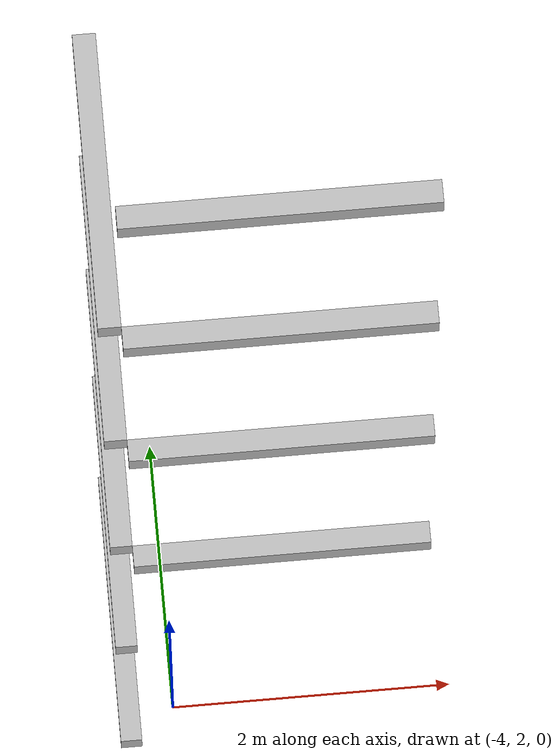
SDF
<sdf version="1.7">
 <world name="default">
  <model name="orthogonal_747_2.000.15_TS">
   <static>1</static>
   <link name="y_link_1_3_1">
    <inertial>
     <mass>1</mass>
     <inertia>
      <ixx>0.166667</ixx>
      <ixy>0</ixy>
      <ixz>0</ixz>
      <iyy>0.166667</iyy>
      <iyz>0</iyz>
      <izz>0.166667</izz>
     </inertia>
    </inertial>
    <pose>2.15 7.525 3.225 0 -0 0</pose>
    <visual name="visual_0">
     <laser_retro>1352</laser_retro>
     <geometry><box><size>0.15 1e-06 0.15</size></box></geometry>
     <material>
      <script><name>Gazebo/Grey</name><uri>file://media/materials/scripts/gazebo.material</uri></script>
      <shader type="pixel"><normal_map>__default__</normal_map></shader>
      <ambient>0.678 0.498 0.659 1</ambient>
      <diffuse>0.7 0.7 0.7 1</diffuse>
      <specular>0.01 0.01 0.01 1</specular>
      <emissive>0 0 0 1</emissive>
     </material>
     <pose>0 -1 0 0 -0 0</pose>
     <transparency>1</transparency>
    </visual>
    <visual name="visual_1">
     <laser_retro>1353</laser_retro>
     <geometry><box><size>0.15 1e-06 0.15</size></box></geometry>
     <material>
      <script><name>Gazebo/Grey</name><uri>file://media/materials/scripts/gazebo.material</uri></script>
      <shader type="pixel"><normal_map>__default__</normal_map></shader>
      <ambient>0.447 0.624 0.812 1</ambient>
      <diffuse>0.7 0.7 0.7 1</diffuse>
      <specular>0.01 0.01 0.01 1</specular>
      <emissive>0 0 0 1</emissive>
     </material>
     <pose>0 1 0 0 -0 0</pose>
     <transparency>1</transparency>
    </visual>
    <visual name="visual_2">
     <laser_retro>1354</laser_retro>
     <geometry><box><size>0.15 2 1e-06</size></box></geometry>
     <material>
      <script><name>Gazebo/Grey</name><uri>file://media/materials/scripts/gazebo.material</uri></script>
      <shader type="pixel"><normal_map>__default__</normal_map></shader>
      <ambient>0.988 0.686 0.243 1</ambient>
      <diffuse>0.7 0.7 0.7 1</diffuse>
      <specular>0.01 0.01 0.01 1</specular>
      <emissive>0 0 0 1</emissive>
     </material>
     <pose>0 0 -0.075 0 -0 0</pose>
     <transparency>1</transparency>
    </visual>
    <visual name="visual_3">
     <laser_retro>1355</laser_retro>
     <geometry><box><size>1e-06 2 0.15</size></box></geometry>
     <material>
      <script><name>Gazebo/Grey</name><uri>file://media/materials/scripts/gazebo.material</uri></script>
      <shader type="pixel"><normal_map>__default__</normal_map></shader>
      <ambient>0.988 0.914 0.31 1</ambient>
      <diffuse>0.7 0.7 0.7 1</diffuse>
      <specular>0.01 0.01 0.01 1</specular>
      <emissive>0 0 0 1</emissive>
     </material>
     <pose>0.075 0 0 0 -0 0</pose>
     <transparency>1</transparency>
    </visual>
    <visual name="visual_4">
     <laser_retro>1356</laser_retro>
     <geometry><box><size>0.15 2 1e-06</size></box></geometry>
     <material>
      <script><name>Gazebo/Grey</name><uri>file://media/materials/scripts/gazebo.material</uri></script>
      <shader type="pixel"><normal_map>__default__</normal_map></shader>
      <ambient>0.937 0.161 0.161 1</ambient>
      <diffuse>0.7 0.7 0.7 1</diffuse>
      <specular>0.01 0.01 0.01 1</specular>
      <emissive>0 0 0 1</emissive>
     </material>
     <pose>0 0 0.075 0 -0 0</pose>
     <transparency>1</transparency>
    </visual>
    <visual name="visual_5">
     <laser_retro>1357</laser_retro>
     <geometry><box><size>1e-06 2 0.15</size></box></geometry>
     <material>
      <script><name>Gazebo/Grey</name><uri>file://media/materials/scripts/gazebo.material</uri></script>
      <shader type="pixel"><normal_map>__default__</normal_map></shader>
      <ambient>0.541 0.886 0.204 1</ambient>
      <diffuse>0.7 0.7 0.7 1</diffuse>
      <specular>0.01 0.01 0.01 1</specular>
      <emissive>0 0 0 1</emissive>
     </material>
     <pose>-0.075 0 0 0 -0 0</pose>
     <transparency>1</transparency>
    </visual>
    <visual name="visual_texture">
     <geometry><box><size>0.149985 1.9998 0.149985</size></box></geometry>
     <material>
      <script>
       <uri>model://BASE_MODELS/simple_block_v2_textured/materials/scripts</uri>
       <uri>model://BASE_MODELS/simple_block_v2_textured/materials/textures</uri>
       <name>metal</name>
      </script>
     </material>
     <laser_retro>1358</laser_retro>
    </visual>
    <collision name="collision">
     <geometry><box><size>0.15 2 0.15</size></box></geometry>
     <surface>
      <friction>
       <ode><mu>1</mu><mu2>1</mu2><fdir1>0 0 0</fdir1><slip1>0</slip1><slip2>0</slip2></ode>
       <torsional>
        <coefficient>1</coefficient>
        <patch_radius>0</patch_radius>
        <surface_radius>0</surface_radius>
        <use_patch_radius>1</use_patch_radius>
        <ode><slip>0</slip></ode>
       </torsional>
      </friction>
      <bounce><restitution_coefficient>0</restitution_coefficient><threshold>1e+06</threshold></bounce>
      <contact>
       <collide_without_contact>0</collide_without_contact>
       <collide_without_contact_bitmask>1</collide_without_contact_bitmask>
       <collide_bitmask>1</collide_bitmask>
       <ode>
        <soft_cfm>0</soft_cfm>
        <soft_erp>0.2</soft_erp>
        <kp>1e+13</kp>
        <kd>1</kd>
        <max_vel>0.01</max_vel>
        <min_depth>0</min_depth>
       </ode>
       <bullet>
        <split_impulse>1</split_impulse>
        <split_impulse_penetration_threshold>-0.01</split_impulse_penetration_threshold>
        <soft_cfm>0</soft_cfm>
        <soft_erp>0.2</soft_erp>
        <kp>1e+13</kp>
        <kd>1</kd>
       </bullet>
      </contact>
     </surface>
    </collision>
   </link>
   <link name="y_link_2_3_1">
    <inertial>
     <mass>1</mass>
     <inertia>
      <ixx>0.166667</ixx>
      <ixy>0</ixy>
      <ixz>0</ixz>
      <iyy>0.166667</iyy>
      <iyz>0</iyz>
      <izz>0.166667</izz>
     </inertia>
    </inertial>
    <pose>2.15 7.525 5.375 0 -0 0</pose>
    <visual name="visual_0">
     <laser_retro>2255</laser_retro>
     <geometry><box><size>0.15 1e-06 0.15</size></box></geometry>
     <material>
      <script><name>Gazebo/Grey</name><uri>file://media/materials/scripts/gazebo.material</uri></script>
      <shader type="pixel"><normal_map>__default__</normal_map></shader>
      <ambient>0.678 0.498 0.659 1</ambient>
      <diffuse>0.7 0.7 0.7 1</diffuse>
      <specular>0.01 0.01 0.01 1</specular>
      <emissive>0 0 0 1</emissive>
     </material>
     <pose>0 -1 0 0 -0 0</pose>
     <transparency>1</transparency>
    </visual>
    <visual name="visual_1">
     <laser_retro>2256</laser_retro>
     <geometry><box><size>0.15 1e-06 0.15</size></box></geometry>
     <material>
      <script><name>Gazebo/Grey</name><uri>file://media/materials/scripts/gazebo.material</uri></script>
      <shader type="pixel"><normal_map>__default__</normal_map></shader>
      <ambient>0.447 0.624 0.812 1</ambient>
      <diffuse>0.7 0.7 0.7 1</diffuse>
      <specular>0.01 0.01 0.01 1</specular>
      <emissive>0 0 0 1</emissive>
     </material>
     <pose>0 1 0 0 -0 0</pose>
     <transparency>1</transparency>
    </visual>
    <visual name="visual_2">
     <laser_retro>2257</laser_retro>
     <geometry><box><size>0.15 2 1e-06</size></box></geometry>
     <material>
      <script><name>Gazebo/Grey</name><uri>file://media/materials/scripts/gazebo.material</uri></script>
      <shader type="pixel"><normal_map>__default__</normal_map></shader>
      <ambient>0.988 0.686 0.243 1</ambient>
      <diffuse>0.7 0.7 0.7 1</diffuse>
      <specular>0.01 0.01 0.01 1</specular>
      <emissive>0 0 0 1</emissive>
     </material>
     <pose>0 0 -0.075 0 -0 0</pose>
     <transparency>1</transparency>
    </visual>
    <visual name="visual_3">
     <laser_retro>2258</laser_retro>
     <geometry><box><size>1e-06 2 0.15</size></box></geometry>
     <material>
      <script><name>Gazebo/Grey</name><uri>file://media/materials/scripts/gazebo.material</uri></script>
      <shader type="pixel"><normal_map>__default__</normal_map></shader>
      <ambient>0.988 0.914 0.31 1</ambient>
      <diffuse>0.7 0.7 0.7 1</diffuse>
      <specular>0.01 0.01 0.01 1</specular>
      <emissive>0 0 0 1</emissive>
     </material>
     <pose>0.075 0 0 0 -0 0</pose>
     <transparency>1</transparency>
    </visual>
    <visual name="visual_4">
     <laser_retro>2259</laser_retro>
     <geometry><box><size>0.15 2 1e-06</size></box></geometry>
     <material>
      <script><name>Gazebo/Grey</name><uri>file://media/materials/scripts/gazebo.material</uri></script>
      <shader type="pixel"><normal_map>__default__</normal_map></shader>
      <ambient>0.937 0.161 0.161 1</ambient>
      <diffuse>0.7 0.7 0.7 1</diffuse>
      <specular>0.01 0.01 0.01 1</specular>
      <emissive>0 0 0 1</emissive>
     </material>
     <pose>0 0 0.075 0 -0 0</pose>
     <transparency>1</transparency>
    </visual>
    <visual name="visual_5">
     <laser_retro>2260</laser_retro>
     <geometry><box><size>1e-06 2 0.15</size></box></geometry>
     <material>
      <script><name>Gazebo/Grey</name><uri>file://media/materials/scripts/gazebo.material</uri></script>
      <shader type="pixel"><normal_map>__default__</normal_map></shader>
      <ambient>0.541 0.886 0.204 1</ambient>
      <diffuse>0.7 0.7 0.7 1</diffuse>
      <specular>0.01 0.01 0.01 1</specular>
      <emissive>0 0 0 1</emissive>
     </material>
     <pose>-0.075 0 0 0 -0 0</pose>
     <transparency>1</transparency>
    </visual>
    <visual name="visual_texture">
     <geometry><box><size>0.149985 1.9998 0.149985</size></box></geometry>
     <material>
      <script>
       <uri>model://BASE_MODELS/simple_block_v2_textured/materials/scripts</uri>
       <uri>model://BASE_MODELS/simple_block_v2_textured/materials/textures</uri>
       <name>metal</name>
      </script>
     </material>
     <laser_retro>2261</laser_retro>
    </visual>
    <collision name="collision">
     <geometry><box><size>0.15 2 0.15</size></box></geometry>
     <surface>
      <friction>
       <ode><mu>1</mu><mu2>1</mu2><fdir1>0 0 0</fdir1><slip1>0</slip1><slip2>0</slip2></ode>
       <torsional>
        <coefficient>1</coefficient>
        <patch_radius>0</patch_radius>
        <surface_radius>0</surface_radius>
        <use_patch_radius>1</use_patch_radius>
        <ode><slip>0</slip></ode>
       </torsional>
      </friction>
      <bounce><restitution_coefficient>0</restitution_coefficient><threshold>1e+06</threshold></bounce>
      <contact>
       <collide_without_contact>0</collide_without_contact>
       <collide_without_contact_bitmask>1</collide_without_contact_bitmask>
       <collide_bitmask>1</collide_bitmask>
       <ode>
        <soft_cfm>0</soft_cfm>
        <soft_erp>0.2</soft_erp>
        <kp>1e+13</kp>
        <kd>1</kd>
        <max_vel>0.01</max_vel>
        <min_depth>0</min_depth>
       </ode>
       <bullet>
        <split_impulse>1</split_impulse>
        <split_impulse_penetration_threshold>-0.01</split_impulse_penetration_threshold>
        <soft_cfm>0</soft_cfm>
        <soft_erp>0.2</soft_erp>
        <kp>1e+13</kp>
        <kd>1</kd>
       </bullet>
      </contact>
     </surface>
    </collision>
   </link>
   <link name="x_link_3_3_1">
    <inertial>
     <mass>1</mass>
     <inertia>
      <ixx>0.166667</ixx>
      <ixy>0</ixy>
      <ixz>0</ixz>
      <iyy>0.166667</iyy>
      <iyz>0</iyz>
      <izz>0.166667</izz>
     </inertia>
    </inertial>
    <pose>3.225 6.45 7.525 0 -0 0</pose>
    <visual name="visual_0">
     <laser_retro>3151</laser_retro>
     <geometry><box><size>2 1e-06 0.15</size></box></geometry>
     <material>
      <script><name>Gazebo/Grey</name><uri>file://media/materials/scripts/gazebo.material</uri></script>
      <shader type="pixel"><normal_map>__default__</normal_map></shader>
      <ambient>0.678 0.498 0.659 1</ambient>
      <diffuse>0.7 0.7 0.7 1</diffuse>
      <specular>0.01 0.01 0.01 1</specular>
      <emissive>0 0 0 1</emissive>
     </material>
     <pose>0 -0.075 0 0 -0 0</pose>
     <transparency>1</transparency>
    </visual>
    <visual name="visual_1">
     <laser_retro>3152</laser_retro>
     <geometry><box><size>2 1e-06 0.15</size></box></geometry>
     <material>
      <script><name>Gazebo/Grey</name><uri>file://media/materials/scripts/gazebo.material</uri></script>
      <shader type="pixel"><normal_map>__default__</normal_map></shader>
      <ambient>0.447 0.624 0.812 1</ambient>
      <diffuse>0.7 0.7 0.7 1</diffuse>
      <specular>0.01 0.01 0.01 1</specular>
      <emissive>0 0 0 1</emissive>
     </material>
     <pose>0 0.075 0 0 -0 0</pose>
     <transparency>1</transparency>
    </visual>
    <visual name="visual_2">
     <laser_retro>3153</laser_retro>
     <geometry><box><size>2 0.15 1e-06</size></box></geometry>
     <material>
      <script><name>Gazebo/Grey</name><uri>file://media/materials/scripts/gazebo.material</uri></script>
      <shader type="pixel"><normal_map>__default__</normal_map></shader>
      <ambient>0.988 0.686 0.243 1</ambient>
      <diffuse>0.7 0.7 0.7 1</diffuse>
      <specular>0.01 0.01 0.01 1</specular>
      <emissive>0 0 0 1</emissive>
     </material>
     <pose>0 0 -0.075 0 -0 0</pose>
     <transparency>1</transparency>
    </visual>
    <visual name="visual_3">
     <laser_retro>3154</laser_retro>
     <geometry><box><size>1e-06 0.15 0.15</size></box></geometry>
     <material>
      <script><name>Gazebo/Grey</name><uri>file://media/materials/scripts/gazebo.material</uri></script>
      <shader type="pixel"><normal_map>__default__</normal_map></shader>
      <ambient>0.988 0.914 0.31 1</ambient>
      <diffuse>0.7 0.7 0.7 1</diffuse>
      <specular>0.01 0.01 0.01 1</specular>
      <emissive>0 0 0 1</emissive>
     </material>
     <pose>1 0 0 0 -0 0</pose>
     <transparency>1</transparency>
    </visual>
    <visual name="visual_4">
     <laser_retro>3155</laser_retro>
     <geometry><box><size>2 0.15 1e-06</size></box></geometry>
     <material>
      <script><name>Gazebo/Grey</name><uri>file://media/materials/scripts/gazebo.material</uri></script>
      <shader type="pixel"><normal_map>__default__</normal_map></shader>
      <ambient>0.937 0.161 0.161 1</ambient>
      <diffuse>0.7 0.7 0.7 1</diffuse>
      <specular>0.01 0.01 0.01 1</specular>
      <emissive>0 0 0 1</emissive>
     </material>
     <pose>0 0 0.075 0 -0 0</pose>
     <transparency>1</transparency>
    </visual>
    <visual name="visual_5">
     <laser_retro>3156</laser_retro>
     <geometry><box><size>1e-06 0.15 0.15</size></box></geometry>
     <material>
      <script><name>Gazebo/Grey</name><uri>file://media/materials/scripts/gazebo.material</uri></script>
      <shader type="pixel"><normal_map>__default__</normal_map></shader>
      <ambient>0.541 0.886 0.204 1</ambient>
      <diffuse>0.7 0.7 0.7 1</diffuse>
      <specular>0.01 0.01 0.01 1</specular>
      <emissive>0 0 0 1</emissive>
     </material>
     <pose>-1 0 0 0 -0 0</pose>
     <transparency>1</transparency>
    </visual>
    <visual name="visual_texture">
     <geometry><box><size>1.9998 0.149985 0.149985</size></box></geometry>
     <material>
      <script>
       <uri>model://BASE_MODELS/simple_block_v2_textured/materials/scripts</uri>
       <uri>model://BASE_MODELS/simple_block_v2_textured/materials/textures</uri>
       <name>metal</name>
      </script>
     </material>
     <laser_retro>3157</laser_retro>
    </visual>
    <collision name="collision">
     <geometry><box><size>2 0.15 0.15</size></box></geometry>
     <surface>
      <friction>
       <ode><mu>1</mu><mu2>1</mu2><fdir1>0 0 0</fdir1><slip1>0</slip1><slip2>0</slip2></ode>
       <torsional>
        <coefficient>1</coefficient>
        <patch_radius>0</patch_radius>
        <surface_radius>0</surface_radius>
        <use_patch_radius>1</use_patch_radius>
        <ode><slip>0</slip></ode>
       </torsional>
      </friction>
      <bounce><restitution_coefficient>0</restitution_coefficient><threshold>1e+06</threshold></bounce>
      <contact>
       <collide_without_contact>0</collide_without_contact>
       <collide_without_contact_bitmask>1</collide_without_contact_bitmask>
       <collide_bitmask>1</collide_bitmask>
       <ode>
        <soft_cfm>0</soft_cfm>
        <soft_erp>0.2</soft_erp>
        <kp>1e+13</kp>
        <kd>1</kd>
        <max_vel>0.01</max_vel>
        <min_depth>0</min_depth>
       </ode>
       <bullet>
        <split_impulse>1</split_impulse>
        <split_impulse_penetration_threshold>-0.01</split_impulse_penetration_threshold>
        <soft_cfm>0</soft_cfm>
        <soft_erp>0.2</soft_erp>
        <kp>1e+13</kp>
        <kd>1</kd>
       </bullet>
      </contact>
     </surface>
    </collision>
   </link>
   <link name="y_link_3_3_1">
    <inertial>
     <mass>1</mass>
     <inertia>
      <ixx>0.166667</ixx>
      <ixy>0</ixy>
      <ixz>0</ixz>
      <iyy>0.166667</iyy>
      <iyz>0</iyz>
      <izz>0.166667</izz>
     </inertia>
    </inertial>
    <pose>2.15 7.525 7.525 0 -0 0</pose>
    <visual name="visual_0">
     <laser_retro>3158</laser_retro>
     <geometry><box><size>0.15 1e-06 0.15</size></box></geometry>
     <material>
      <script><name>Gazebo/Grey</name><uri>file://media/materials/scripts/gazebo.material</uri></script>
      <shader type="pixel"><normal_map>__default__</normal_map></shader>
      <ambient>0.678 0.498 0.659 1</ambient>
      <diffuse>0.7 0.7 0.7 1</diffuse>
      <specular>0.01 0.01 0.01 1</specular>
      <emissive>0 0 0 1</emissive>
     </material>
     <pose>0 -1 0 0 -0 0</pose>
     <transparency>1</transparency>
    </visual>
    <visual name="visual_1">
     <laser_retro>3159</laser_retro>
     <geometry><box><size>0.15 1e-06 0.15</size></box></geometry>
     <material>
      <script><name>Gazebo/Grey</name><uri>file://media/materials/scripts/gazebo.material</uri></script>
      <shader type="pixel"><normal_map>__default__</normal_map></shader>
      <ambient>0.447 0.624 0.812 1</ambient>
      <diffuse>0.7 0.7 0.7 1</diffuse>
      <specular>0.01 0.01 0.01 1</specular>
      <emissive>0 0 0 1</emissive>
     </material>
     <pose>0 1 0 0 -0 0</pose>
     <transparency>1</transparency>
    </visual>
    <visual name="visual_2">
     <laser_retro>3160</laser_retro>
     <geometry><box><size>0.15 2 1e-06</size></box></geometry>
     <material>
      <script><name>Gazebo/Grey</name><uri>file://media/materials/scripts/gazebo.material</uri></script>
      <shader type="pixel"><normal_map>__default__</normal_map></shader>
      <ambient>0.988 0.686 0.243 1</ambient>
      <diffuse>0.7 0.7 0.7 1</diffuse>
      <specular>0.01 0.01 0.01 1</specular>
      <emissive>0 0 0 1</emissive>
     </material>
     <pose>0 0 -0.075 0 -0 0</pose>
     <transparency>1</transparency>
    </visual>
    <visual name="visual_3">
     <laser_retro>3161</laser_retro>
     <geometry><box><size>1e-06 2 0.15</size></box></geometry>
     <material>
      <script><name>Gazebo/Grey</name><uri>file://media/materials/scripts/gazebo.material</uri></script>
      <shader type="pixel"><normal_map>__default__</normal_map></shader>
      <ambient>0.988 0.914 0.31 1</ambient>
      <diffuse>0.7 0.7 0.7 1</diffuse>
      <specular>0.01 0.01 0.01 1</specular>
      <emissive>0 0 0 1</emissive>
     </material>
     <pose>0.075 0 0 0 -0 0</pose>
     <transparency>1</transparency>
    </visual>
    <visual name="visual_4">
     <laser_retro>3162</laser_retro>
     <geometry><box><size>0.15 2 1e-06</size></box></geometry>
     <material>
      <script><name>Gazebo/Grey</name><uri>file://media/materials/scripts/gazebo.material</uri></script>
      <shader type="pixel"><normal_map>__default__</normal_map></shader>
      <ambient>0.937 0.161 0.161 1</ambient>
      <diffuse>0.7 0.7 0.7 1</diffuse>
      <specular>0.01 0.01 0.01 1</specular>
      <emissive>0 0 0 1</emissive>
     </material>
     <pose>0 0 0.075 0 -0 0</pose>
     <transparency>1</transparency>
    </visual>
    <visual name="visual_5">
     <laser_retro>3163</laser_retro>
     <geometry><box><size>1e-06 2 0.15</size></box></geometry>
     <material>
      <script><name>Gazebo/Grey</name><uri>file://media/materials/scripts/gazebo.material</uri></script>
      <shader type="pixel"><normal_map>__default__</normal_map></shader>
      <ambient>0.541 0.886 0.204 1</ambient>
      <diffuse>0.7 0.7 0.7 1</diffuse>
      <specular>0.01 0.01 0.01 1</specular>
      <emissive>0 0 0 1</emissive>
     </material>
     <pose>-0.075 0 0 0 -0 0</pose>
     <transparency>1</transparency>
    </visual>
    <visual name="visual_texture">
     <geometry><box><size>0.149985 1.9998 0.149985</size></box></geometry>
     <material>
      <script>
       <uri>model://BASE_MODELS/simple_block_v2_textured/materials/scripts</uri>
       <uri>model://BASE_MODELS/simple_block_v2_textured/materials/textures</uri>
       <name>metal</name>
      </script>
     </material>
     <laser_retro>3164</laser_retro>
    </visual>
    <collision name="collision">
     <geometry><box><size>0.15 2 0.15</size></box></geometry>
     <surface>
      <friction>
       <ode><mu>1</mu><mu2>1</mu2><fdir1>0 0 0</fdir1><slip1>0</slip1><slip2>0</slip2></ode>
       <torsional>
        <coefficient>1</coefficient>
        <patch_radius>0</patch_radius>
        <surface_radius>0</surface_radius>
        <use_patch_radius>1</use_patch_radius>
        <ode><slip>0</slip></ode>
       </torsional>
      </friction>
      <bounce><restitution_coefficient>0</restitution_coefficient><threshold>1e+06</threshold></bounce>
      <contact>
       <collide_without_contact>0</collide_without_contact>
       <collide_without_contact_bitmask>1</collide_without_contact_bitmask>
       <collide_bitmask>1</collide_bitmask>
       <ode>
        <soft_cfm>0</soft_cfm>
        <soft_erp>0.2</soft_erp>
        <kp>1e+13</kp>
        <kd>1</kd>
        <max_vel>0.01</max_vel>
        <min_depth>0</min_depth>
       </ode>
       <bullet>
        <split_impulse>1</split_impulse>
        <split_impulse_penetration_threshold>-0.01</split_impulse_penetration_threshold>
        <soft_cfm>0</soft_cfm>
        <soft_erp>0.2</soft_erp>
        <kp>1e+13</kp>
        <kd>1</kd>
       </bullet>
      </contact>
     </surface>
    </collision>
   </link>
   <link name="x_link_4_3_1">
    <inertial>
     <mass>1</mass>
     <inertia>
      <ixx>0.166667</ixx>
      <ixy>0</ixy>
      <ixz>0</ixz>
      <iyy>0.166667</iyy>
      <iyz>0</iyz>
      <izz>0.166667</izz>
     </inertia>
    </inertial>
    <pose>3.225 6.45 9.675 0 -0 0</pose>
    <visual name="visual_0">
     <laser_retro>4054</laser_retro>
     <geometry><box><size>2 1e-06 0.15</size></box></geometry>
     <material>
      <script><name>Gazebo/Grey</name><uri>file://media/materials/scripts/gazebo.material</uri></script>
      <shader type="pixel"><normal_map>__default__</normal_map></shader>
      <ambient>0.678 0.498 0.659 1</ambient>
      <diffuse>0.7 0.7 0.7 1</diffuse>
      <specular>0.01 0.01 0.01 1</specular>
      <emissive>0 0 0 1</emissive>
     </material>
     <pose>0 -0.075 0 0 -0 0</pose>
     <transparency>1</transparency>
    </visual>
    <visual name="visual_1">
     <laser_retro>4055</laser_retro>
     <geometry><box><size>2 1e-06 0.15</size></box></geometry>
     <material>
      <script><name>Gazebo/Grey</name><uri>file://media/materials/scripts/gazebo.material</uri></script>
      <shader type="pixel"><normal_map>__default__</normal_map></shader>
      <ambient>0.447 0.624 0.812 1</ambient>
      <diffuse>0.7 0.7 0.7 1</diffuse>
      <specular>0.01 0.01 0.01 1</specular>
      <emissive>0 0 0 1</emissive>
     </material>
     <pose>0 0.075 0 0 -0 0</pose>
     <transparency>1</transparency>
    </visual>
    <visual name="visual_2">
     <laser_retro>4056</laser_retro>
     <geometry><box><size>2 0.15 1e-06</size></box></geometry>
     <material>
      <script><name>Gazebo/Grey</name><uri>file://media/materials/scripts/gazebo.material</uri></script>
      <shader type="pixel"><normal_map>__default__</normal_map></shader>
      <ambient>0.988 0.686 0.243 1</ambient>
      <diffuse>0.7 0.7 0.7 1</diffuse>
      <specular>0.01 0.01 0.01 1</specular>
      <emissive>0 0 0 1</emissive>
     </material>
     <pose>0 0 -0.075 0 -0 0</pose>
     <transparency>1</transparency>
    </visual>
    <visual name="visual_3">
     <laser_retro>4057</laser_retro>
     <geometry><box><size>1e-06 0.15 0.15</size></box></geometry>
     <material>
      <script><name>Gazebo/Grey</name><uri>file://media/materials/scripts/gazebo.material</uri></script>
      <shader type="pixel"><normal_map>__default__</normal_map></shader>
      <ambient>0.988 0.914 0.31 1</ambient>
      <diffuse>0.7 0.7 0.7 1</diffuse>
      <specular>0.01 0.01 0.01 1</specular>
      <emissive>0 0 0 1</emissive>
     </material>
     <pose>1 0 0 0 -0 0</pose>
     <transparency>1</transparency>
    </visual>
    <visual name="visual_4">
     <laser_retro>4058</laser_retro>
     <geometry><box><size>2 0.15 1e-06</size></box></geometry>
     <material>
      <script><name>Gazebo/Grey</name><uri>file://media/materials/scripts/gazebo.material</uri></script>
      <shader type="pixel"><normal_map>__default__</normal_map></shader>
      <ambient>0.937 0.161 0.161 1</ambient>
      <diffuse>0.7 0.7 0.7 1</diffuse>
      <specular>0.01 0.01 0.01 1</specular>
      <emissive>0 0 0 1</emissive>
     </material>
     <pose>0 0 0.075 0 -0 0</pose>
     <transparency>1</transparency>
    </visual>
    <visual name="visual_5">
     <laser_retro>4059</laser_retro>
     <geometry><box><size>1e-06 0.15 0.15</size></box></geometry>
     <material>
      <script><name>Gazebo/Grey</name><uri>file://media/materials/scripts/gazebo.material</uri></script>
      <shader type="pixel"><normal_map>__default__</normal_map></shader>
      <ambient>0.541 0.886 0.204 1</ambient>
      <diffuse>0.7 0.7 0.7 1</diffuse>
      <specular>0.01 0.01 0.01 1</specular>
      <emissive>0 0 0 1</emissive>
     </material>
     <pose>-1 0 0 0 -0 0</pose>
     <transparency>1</transparency>
    </visual>
    <visual name="visual_texture">
     <geometry><box><size>1.9998 0.149985 0.149985</size></box></geometry>
     <material>
      <script>
       <uri>model://BASE_MODELS/simple_block_v2_textured/materials/scripts</uri>
       <uri>model://BASE_MODELS/simple_block_v2_textured/materials/textures</uri>
       <name>metal</name>
      </script>
     </material>
     <laser_retro>4060</laser_retro>
    </visual>
    <collision name="collision">
     <geometry><box><size>2 0.15 0.15</size></box></geometry>
     <surface>
      <friction>
       <ode><mu>1</mu><mu2>1</mu2><fdir1>0 0 0</fdir1><slip1>0</slip1><slip2>0</slip2></ode>
       <torsional>
        <coefficient>1</coefficient>
        <patch_radius>0</patch_radius>
        <surface_radius>0</surface_radius>
        <use_patch_radius>1</use_patch_radius>
        <ode><slip>0</slip></ode>
       </torsional>
      </friction>
      <bounce><restitution_coefficient>0</restitution_coefficient><threshold>1e+06</threshold></bounce>
      <contact>
       <collide_without_contact>0</collide_without_contact>
       <collide_without_contact_bitmask>1</collide_without_contact_bitmask>
       <collide_bitmask>1</collide_bitmask>
       <ode>
        <soft_cfm>0</soft_cfm>
        <soft_erp>0.2</soft_erp>
        <kp>1e+13</kp>
        <kd>1</kd>
        <max_vel>0.01</max_vel>
        <min_depth>0</min_depth>
       </ode>
       <bullet>
        <split_impulse>1</split_impulse>
        <split_impulse_penetration_threshold>-0.01</split_impulse_penetration_threshold>
        <soft_cfm>0</soft_cfm>
        <soft_erp>0.2</soft_erp>
        <kp>1e+13</kp>
        <kd>1</kd>
       </bullet>
      </contact>
     </surface>
    </collision>
   </link>
   <link name="y_link_4_3_1">
    <inertial>
     <mass>1</mass>
     <inertia>
      <ixx>0.166667</ixx>
      <ixy>0</ixy>
      <ixz>0</ixz>
      <iyy>0.166667</iyy>
      <iyz>0</iyz>
      <izz>0.166667</izz>
     </inertia>
    </inertial>
    <pose>2.15 7.525 9.675 0 -0 0</pose>
    <visual name="visual_0">
     <laser_retro>4061</laser_retro>
     <geometry><box><size>0.15 1e-06 0.15</size></box></geometry>
     <material>
      <script><name>Gazebo/Grey</name><uri>file://media/materials/scripts/gazebo.material</uri></script>
      <shader type="pixel"><normal_map>__default__</normal_map></shader>
      <ambient>0.678 0.498 0.659 1</ambient>
      <diffuse>0.7 0.7 0.7 1</diffuse>
      <specular>0.01 0.01 0.01 1</specular>
      <emissive>0 0 0 1</emissive>
     </material>
     <pose>0 -1 0 0 -0 0</pose>
     <transparency>1</transparency>
    </visual>
    <visual name="visual_1">
     <laser_retro>4062</laser_retro>
     <geometry><box><size>0.15 1e-06 0.15</size></box></geometry>
     <material>
      <script><name>Gazebo/Grey</name><uri>file://media/materials/scripts/gazebo.material</uri></script>
      <shader type="pixel"><normal_map>__default__</normal_map></shader>
      <ambient>0.447 0.624 0.812 1</ambient>
      <diffuse>0.7 0.7 0.7 1</diffuse>
      <specular>0.01 0.01 0.01 1</specular>
      <emissive>0 0 0 1</emissive>
     </material>
     <pose>0 1 0 0 -0 0</pose>
     <transparency>1</transparency>
    </visual>
    <visual name="visual_2">
     <laser_retro>4063</laser_retro>
     <geometry><box><size>0.15 2 1e-06</size></box></geometry>
     <material>
      <script><name>Gazebo/Grey</name><uri>file://media/materials/scripts/gazebo.material</uri></script>
      <shader type="pixel"><normal_map>__default__</normal_map></shader>
      <ambient>0.988 0.686 0.243 1</ambient>
      <diffuse>0.7 0.7 0.7 1</diffuse>
      <specular>0.01 0.01 0.01 1</specular>
      <emissive>0 0 0 1</emissive>
     </material>
     <pose>0 0 -0.075 0 -0 0</pose>
     <transparency>1</transparency>
    </visual>
    <visual name="visual_3">
     <laser_retro>4064</laser_retro>
     <geometry><box><size>1e-06 2 0.15</size></box></geometry>
     <material>
      <script><name>Gazebo/Grey</name><uri>file://media/materials/scripts/gazebo.material</uri></script>
      <shader type="pixel"><normal_map>__default__</normal_map></shader>
      <ambient>0.988 0.914 0.31 1</ambient>
      <diffuse>0.7 0.7 0.7 1</diffuse>
      <specular>0.01 0.01 0.01 1</specular>
      <emissive>0 0 0 1</emissive>
     </material>
     <pose>0.075 0 0 0 -0 0</pose>
     <transparency>1</transparency>
    </visual>
    <visual name="visual_4">
     <laser_retro>4065</laser_retro>
     <geometry><box><size>0.15 2 1e-06</size></box></geometry>
     <material>
      <script><name>Gazebo/Grey</name><uri>file://media/materials/scripts/gazebo.material</uri></script>
      <shader type="pixel"><normal_map>__default__</normal_map></shader>
      <ambient>0.937 0.161 0.161 1</ambient>
      <diffuse>0.7 0.7 0.7 1</diffuse>
      <specular>0.01 0.01 0.01 1</specular>
      <emissive>0 0 0 1</emissive>
     </material>
     <pose>0 0 0.075 0 -0 0</pose>
     <transparency>1</transparency>
    </visual>
    <visual name="visual_5">
     <laser_retro>4066</laser_retro>
     <geometry><box><size>1e-06 2 0.15</size></box></geometry>
     <material>
      <script><name>Gazebo/Grey</name><uri>file://media/materials/scripts/gazebo.material</uri></script>
      <shader type="pixel"><normal_map>__default__</normal_map></shader>
      <ambient>0.541 0.886 0.204 1</ambient>
      <diffuse>0.7 0.7 0.7 1</diffuse>
      <specular>0.01 0.01 0.01 1</specular>
      <emissive>0 0 0 1</emissive>
     </material>
     <pose>-0.075 0 0 0 -0 0</pose>
     <transparency>1</transparency>
    </visual>
    <visual name="visual_texture">
     <geometry><box><size>0.149985 1.9998 0.149985</size></box></geometry>
     <material>
      <script>
       <uri>model://BASE_MODELS/simple_block_v2_textured/materials/scripts</uri>
       <uri>model://BASE_MODELS/simple_block_v2_textured/materials/textures</uri>
       <name>metal</name>
      </script>
     </material>
     <laser_retro>4067</laser_retro>
    </visual>
    <collision name="collision">
     <geometry><box><size>0.15 2 0.15</size></box></geometry>
     <surface>
      <friction>
       <ode><mu>1</mu><mu2>1</mu2><fdir1>0 0 0</fdir1><slip1>0</slip1><slip2>0</slip2></ode>
       <torsional>
        <coefficient>1</coefficient>
        <patch_radius>0</patch_radius>
        <surface_radius>0</surface_radius>
        <use_patch_radius>1</use_patch_radius>
        <ode><slip>0</slip></ode>
       </torsional>
      </friction>
      <bounce><restitution_coefficient>0</restitution_coefficient><threshold>1e+06</threshold></bounce>
      <contact>
       <collide_without_contact>0</collide_without_contact>
       <collide_without_contact_bitmask>1</collide_without_contact_bitmask>
       <collide_bitmask>1</collide_bitmask>
       <ode>
        <soft_cfm>0</soft_cfm>
        <soft_erp>0.2</soft_erp>
        <kp>1e+13</kp>
        <kd>1</kd>
        <max_vel>0.01</max_vel>
        <min_depth>0</min_depth>
       </ode>
       <bullet>
        <split_impulse>1</split_impulse>
        <split_impulse_penetration_threshold>-0.01</split_impulse_penetration_threshold>
        <soft_cfm>0</soft_cfm>
        <soft_erp>0.2</soft_erp>
        <kp>1e+13</kp>
        <kd>1</kd>
       </bullet>
      </contact>
     </surface>
    </collision>
   </link>
   <link name="x_link_5_3_1">
    <inertial>
     <mass>1</mass>
     <inertia>
      <ixx>0.166667</ixx>
      <ixy>0</ixy>
      <ixz>0</ixz>
      <iyy>0.166667</iyy>
      <iyz>0</iyz>
      <izz>0.166667</izz>
     </inertia>
    </inertial>
    <pose>3.225 6.45 11.825 0 -0 0</pose>
    <visual name="visual_0">
     <laser_retro>4957</laser_retro>
     <geometry><box><size>2 1e-06 0.15</size></box></geometry>
     <material>
      <script><name>Gazebo/Grey</name><uri>file://media/materials/scripts/gazebo.material</uri></script>
      <shader type="pixel"><normal_map>__default__</normal_map></shader>
      <ambient>0.678 0.498 0.659 1</ambient>
      <diffuse>0.7 0.7 0.7 1</diffuse>
      <specular>0.01 0.01 0.01 1</specular>
      <emissive>0 0 0 1</emissive>
     </material>
     <pose>0 -0.075 0 0 -0 0</pose>
     <transparency>1</transparency>
    </visual>
    <visual name="visual_1">
     <laser_retro>4958</laser_retro>
     <geometry><box><size>2 1e-06 0.15</size></box></geometry>
     <material>
      <script><name>Gazebo/Grey</name><uri>file://media/materials/scripts/gazebo.material</uri></script>
      <shader type="pixel"><normal_map>__default__</normal_map></shader>
      <ambient>0.447 0.624 0.812 1</ambient>
      <diffuse>0.7 0.7 0.7 1</diffuse>
      <specular>0.01 0.01 0.01 1</specular>
      <emissive>0 0 0 1</emissive>
     </material>
     <pose>0 0.075 0 0 -0 0</pose>
     <transparency>1</transparency>
    </visual>
    <visual name="visual_2">
     <laser_retro>4959</laser_retro>
     <geometry><box><size>2 0.15 1e-06</size></box></geometry>
     <material>
      <script><name>Gazebo/Grey</name><uri>file://media/materials/scripts/gazebo.material</uri></script>
      <shader type="pixel"><normal_map>__default__</normal_map></shader>
      <ambient>0.988 0.686 0.243 1</ambient>
      <diffuse>0.7 0.7 0.7 1</diffuse>
      <specular>0.01 0.01 0.01 1</specular>
      <emissive>0 0 0 1</emissive>
     </material>
     <pose>0 0 -0.075 0 -0 0</pose>
     <transparency>1</transparency>
    </visual>
    <visual name="visual_3">
     <laser_retro>4960</laser_retro>
     <geometry><box><size>1e-06 0.15 0.15</size></box></geometry>
     <material>
      <script><name>Gazebo/Grey</name><uri>file://media/materials/scripts/gazebo.material</uri></script>
      <shader type="pixel"><normal_map>__default__</normal_map></shader>
      <ambient>0.988 0.914 0.31 1</ambient>
      <diffuse>0.7 0.7 0.7 1</diffuse>
      <specular>0.01 0.01 0.01 1</specular>
      <emissive>0 0 0 1</emissive>
     </material>
     <pose>1 0 0 0 -0 0</pose>
     <transparency>1</transparency>
    </visual>
    <visual name="visual_4">
     <laser_retro>4961</laser_retro>
     <geometry><box><size>2 0.15 1e-06</size></box></geometry>
     <material>
      <script><name>Gazebo/Grey</name><uri>file://media/materials/scripts/gazebo.material</uri></script>
      <shader type="pixel"><normal_map>__default__</normal_map></shader>
      <ambient>0.937 0.161 0.161 1</ambient>
      <diffuse>0.7 0.7 0.7 1</diffuse>
      <specular>0.01 0.01 0.01 1</specular>
      <emissive>0 0 0 1</emissive>
     </material>
     <pose>0 0 0.075 0 -0 0</pose>
     <transparency>1</transparency>
    </visual>
    <visual name="visual_5">
     <laser_retro>4962</laser_retro>
     <geometry><box><size>1e-06 0.15 0.15</size></box></geometry>
     <material>
      <script><name>Gazebo/Grey</name><uri>file://media/materials/scripts/gazebo.material</uri></script>
      <shader type="pixel"><normal_map>__default__</normal_map></shader>
      <ambient>0.541 0.886 0.204 1</ambient>
      <diffuse>0.7 0.7 0.7 1</diffuse>
      <specular>0.01 0.01 0.01 1</specular>
      <emissive>0 0 0 1</emissive>
     </material>
     <pose>-1 0 0 0 -0 0</pose>
     <transparency>1</transparency>
    </visual>
    <visual name="visual_texture">
     <geometry><box><size>1.9998 0.149985 0.149985</size></box></geometry>
     <material>
      <script>
       <uri>model://BASE_MODELS/simple_block_v2_textured/materials/scripts</uri>
       <uri>model://BASE_MODELS/simple_block_v2_textured/materials/textures</uri>
       <name>metal</name>
      </script>
     </material>
     <laser_retro>4963</laser_retro>
    </visual>
    <collision name="collision">
     <geometry><box><size>2 0.15 0.15</size></box></geometry>
     <surface>
      <friction>
       <ode><mu>1</mu><mu2>1</mu2><fdir1>0 0 0</fdir1><slip1>0</slip1><slip2>0</slip2></ode>
       <torsional>
        <coefficient>1</coefficient>
        <patch_radius>0</patch_radius>
        <surface_radius>0</surface_radius>
        <use_patch_radius>1</use_patch_radius>
        <ode><slip>0</slip></ode>
       </torsional>
      </friction>
      <bounce><restitution_coefficient>0</restitution_coefficient><threshold>1e+06</threshold></bounce>
      <contact>
       <collide_without_contact>0</collide_without_contact>
       <collide_without_contact_bitmask>1</collide_without_contact_bitmask>
       <collide_bitmask>1</collide_bitmask>
       <ode>
        <soft_cfm>0</soft_cfm>
        <soft_erp>0.2</soft_erp>
        <kp>1e+13</kp>
        <kd>1</kd>
        <max_vel>0.01</max_vel>
        <min_depth>0</min_depth>
       </ode>
       <bullet>
        <split_impulse>1</split_impulse>
        <split_impulse_penetration_threshold>-0.01</split_impulse_penetration_threshold>
        <soft_cfm>0</soft_cfm>
        <soft_erp>0.2</soft_erp>
        <kp>1e+13</kp>
        <kd>1</kd>
       </bullet>
      </contact>
     </surface>
    </collision>
   </link>
   <link name="y_link_5_3_1">
    <inertial>
     <mass>1</mass>
     <inertia>
      <ixx>0.166667</ixx>
      <ixy>0</ixy>
      <ixz>0</ixz>
      <iyy>0.166667</iyy>
      <iyz>0</iyz>
      <izz>0.166667</izz>
     </inertia>
    </inertial>
    <pose>2.15 7.525 11.825 0 -0 0</pose>
    <visual name="visual_0">
     <laser_retro>4964</laser_retro>
     <geometry><box><size>0.15 1e-06 0.15</size></box></geometry>
     <material>
      <script><name>Gazebo/Grey</name><uri>file://media/materials/scripts/gazebo.material</uri></script>
      <shader type="pixel"><normal_map>__default__</normal_map></shader>
      <ambient>0.678 0.498 0.659 1</ambient>
      <diffuse>0.7 0.7 0.7 1</diffuse>
      <specular>0.01 0.01 0.01 1</specular>
      <emissive>0 0 0 1</emissive>
     </material>
     <pose>0 -1 0 0 -0 0</pose>
     <transparency>1</transparency>
    </visual>
    <visual name="visual_1">
     <laser_retro>4965</laser_retro>
     <geometry><box><size>0.15 1e-06 0.15</size></box></geometry>
     <material>
      <script><name>Gazebo/Grey</name><uri>file://media/materials/scripts/gazebo.material</uri></script>
      <shader type="pixel"><normal_map>__default__</normal_map></shader>
      <ambient>0.447 0.624 0.812 1</ambient>
      <diffuse>0.7 0.7 0.7 1</diffuse>
      <specular>0.01 0.01 0.01 1</specular>
      <emissive>0 0 0 1</emissive>
     </material>
     <pose>0 1 0 0 -0 0</pose>
     <transparency>1</transparency>
    </visual>
    <visual name="visual_2">
     <laser_retro>4966</laser_retro>
     <geometry><box><size>0.15 2 1e-06</size></box></geometry>
     <material>
      <script><name>Gazebo/Grey</name><uri>file://media/materials/scripts/gazebo.material</uri></script>
      <shader type="pixel"><normal_map>__default__</normal_map></shader>
      <ambient>0.988 0.686 0.243 1</ambient>
      <diffuse>0.7 0.7 0.7 1</diffuse>
      <specular>0.01 0.01 0.01 1</specular>
      <emissive>0 0 0 1</emissive>
     </material>
     <pose>0 0 -0.075 0 -0 0</pose>
     <transparency>1</transparency>
    </visual>
    <visual name="visual_3">
     <laser_retro>4967</laser_retro>
     <geometry><box><size>1e-06 2 0.15</size></box></geometry>
     <material>
      <script><name>Gazebo/Grey</name><uri>file://media/materials/scripts/gazebo.material</uri></script>
      <shader type="pixel"><normal_map>__default__</normal_map></shader>
      <ambient>0.988 0.914 0.31 1</ambient>
      <diffuse>0.7 0.7 0.7 1</diffuse>
      <specular>0.01 0.01 0.01 1</specular>
      <emissive>0 0 0 1</emissive>
     </material>
     <pose>0.075 0 0 0 -0 0</pose>
     <transparency>1</transparency>
    </visual>
    <visual name="visual_4">
     <laser_retro>4968</laser_retro>
     <geometry><box><size>0.15 2 1e-06</size></box></geometry>
     <material>
      <script><name>Gazebo/Grey</name><uri>file://media/materials/scripts/gazebo.material</uri></script>
      <shader type="pixel"><normal_map>__default__</normal_map></shader>
      <ambient>0.937 0.161 0.161 1</ambient>
      <diffuse>0.7 0.7 0.7 1</diffuse>
      <specular>0.01 0.01 0.01 1</specular>
      <emissive>0 0 0 1</emissive>
     </material>
     <pose>0 0 0.075 0 -0 0</pose>
     <transparency>1</transparency>
    </visual>
    <visual name="visual_5">
     <laser_retro>4969</laser_retro>
     <geometry><box><size>1e-06 2 0.15</size></box></geometry>
     <material>
      <script><name>Gazebo/Grey</name><uri>file://media/materials/scripts/gazebo.material</uri></script>
      <shader type="pixel"><normal_map>__default__</normal_map></shader>
      <ambient>0.541 0.886 0.204 1</ambient>
      <diffuse>0.7 0.7 0.7 1</diffuse>
      <specular>0.01 0.01 0.01 1</specular>
      <emissive>0 0 0 1</emissive>
     </material>
     <pose>-0.075 0 0 0 -0 0</pose>
     <transparency>1</transparency>
    </visual>
    <visual name="visual_texture">
     <geometry><box><size>0.149985 1.9998 0.149985</size></box></geometry>
     <material>
      <script>
       <uri>model://BASE_MODELS/simple_block_v2_textured/materials/scripts</uri>
       <uri>model://BASE_MODELS/simple_block_v2_textured/materials/textures</uri>
       <name>metal</name>
      </script>
     </material>
     <laser_retro>4970</laser_retro>
    </visual>
    <collision name="collision">
     <geometry><box><size>0.15 2 0.15</size></box></geometry>
     <surface>
      <friction>
       <ode><mu>1</mu><mu2>1</mu2><fdir1>0 0 0</fdir1><slip1>0</slip1><slip2>0</slip2></ode>
       <torsional>
        <coefficient>1</coefficient>
        <patch_radius>0</patch_radius>
        <surface_radius>0</surface_radius>
        <use_patch_radius>1</use_patch_radius>
        <ode><slip>0</slip></ode>
       </torsional>
      </friction>
      <bounce><restitution_coefficient>0</restitution_coefficient><threshold>1e+06</threshold></bounce>
      <contact>
       <collide_without_contact>0</collide_without_contact>
       <collide_without_contact_bitmask>1</collide_without_contact_bitmask>
       <collide_bitmask>1</collide_bitmask>
       <ode>
        <soft_cfm>0</soft_cfm>
        <soft_erp>0.2</soft_erp>
        <kp>1e+13</kp>
        <kd>1</kd>
        <max_vel>0.01</max_vel>
        <min_depth>0</min_depth>
       </ode>
       <bullet>
        <split_impulse>1</split_impulse>
        <split_impulse_penetration_threshold>-0.01</split_impulse_penetration_threshold>
        <soft_cfm>0</soft_cfm>
        <soft_erp>0.2</soft_erp>
        <kp>1e+13</kp>
        <kd>1</kd>
       </bullet>
      </contact>
     </surface>
    </collision>
   </link>
   <link name="x_link_6_3_1">
    <inertial>
     <mass>1</mass>
     <inertia>
      <ixx>0.166667</ixx>
      <ixy>0</ixy>
      <ixz>0</ixz>
      <iyy>0.166667</iyy>
      <iyz>0</iyz>
      <izz>0.166667</izz>
     </inertia>
    </inertial>
    <pose>3.225 6.45 13.975 0 -0 0</pose>
    <visual name="visual_0">
     <laser_retro>5944</laser_retro>
     <geometry><box><size>2 1e-06 0.15</size></box></geometry>
     <material>
      <script><name>Gazebo/Grey</name><uri>file://media/materials/scripts/gazebo.material</uri></script>
      <shader type="pixel"><normal_map>__default__</normal_map></shader>
      <ambient>0.678 0.498 0.659 1</ambient>
      <diffuse>0.7 0.7 0.7 1</diffuse>
      <specular>0.01 0.01 0.01 1</specular>
      <emissive>0 0 0 1</emissive>
     </material>
     <pose>0 -0.075 0 0 -0 0</pose>
     <transparency>1</transparency>
    </visual>
    <visual name="visual_1">
     <laser_retro>5945</laser_retro>
     <geometry><box><size>2 1e-06 0.15</size></box></geometry>
     <material>
      <script><name>Gazebo/Grey</name><uri>file://media/materials/scripts/gazebo.material</uri></script>
      <shader type="pixel"><normal_map>__default__</normal_map></shader>
      <ambient>0.447 0.624 0.812 1</ambient>
      <diffuse>0.7 0.7 0.7 1</diffuse>
      <specular>0.01 0.01 0.01 1</specular>
      <emissive>0 0 0 1</emissive>
     </material>
     <pose>0 0.075 0 0 -0 0</pose>
     <transparency>1</transparency>
    </visual>
    <visual name="visual_2">
     <laser_retro>5946</laser_retro>
     <geometry><box><size>2 0.15 1e-06</size></box></geometry>
     <material>
      <script><name>Gazebo/Grey</name><uri>file://media/materials/scripts/gazebo.material</uri></script>
      <shader type="pixel"><normal_map>__default__</normal_map></shader>
      <ambient>0.988 0.686 0.243 1</ambient>
      <diffuse>0.7 0.7 0.7 1</diffuse>
      <specular>0.01 0.01 0.01 1</specular>
      <emissive>0 0 0 1</emissive>
     </material>
     <pose>0 0 -0.075 0 -0 0</pose>
     <transparency>1</transparency>
    </visual>
    <visual name="visual_3">
     <laser_retro>5947</laser_retro>
     <geometry><box><size>1e-06 0.15 0.15</size></box></geometry>
     <material>
      <script><name>Gazebo/Grey</name><uri>file://media/materials/scripts/gazebo.material</uri></script>
      <shader type="pixel"><normal_map>__default__</normal_map></shader>
      <ambient>0.988 0.914 0.31 1</ambient>
      <diffuse>0.7 0.7 0.7 1</diffuse>
      <specular>0.01 0.01 0.01 1</specular>
      <emissive>0 0 0 1</emissive>
     </material>
     <pose>1 0 0 0 -0 0</pose>
     <transparency>1</transparency>
    </visual>
    <visual name="visual_4">
     <laser_retro>5948</laser_retro>
     <geometry><box><size>2 0.15 1e-06</size></box></geometry>
     <material>
      <script><name>Gazebo/Grey</name><uri>file://media/materials/scripts/gazebo.material</uri></script>
      <shader type="pixel"><normal_map>__default__</normal_map></shader>
      <ambient>0.937 0.161 0.161 1</ambient>
      <diffuse>0.7 0.7 0.7 1</diffuse>
      <specular>0.01 0.01 0.01 1</specular>
      <emissive>0 0 0 1</emissive>
     </material>
     <pose>0 0 0.075 0 -0 0</pose>
     <transparency>1</transparency>
    </visual>
    <visual name="visual_5">
     <laser_retro>5949</laser_retro>
     <geometry><box><size>1e-06 0.15 0.15</size></box></geometry>
     <material>
      <script><name>Gazebo/Grey</name><uri>file://media/materials/scripts/gazebo.material</uri></script>
      <shader type="pixel"><normal_map>__default__</normal_map></shader>
      <ambient>0.541 0.886 0.204 1</ambient>
      <diffuse>0.7 0.7 0.7 1</diffuse>
      <specular>0.01 0.01 0.01 1</specular>
      <emissive>0 0 0 1</emissive>
     </material>
     <pose>-1 0 0 0 -0 0</pose>
     <transparency>1</transparency>
    </visual>
    <visual name="visual_texture">
     <geometry><box><size>1.9998 0.149985 0.149985</size></box></geometry>
     <material>
      <script>
       <uri>model://BASE_MODELS/simple_block_v2_textured/materials/scripts</uri>
       <uri>model://BASE_MODELS/simple_block_v2_textured/materials/textures</uri>
       <name>metal</name>
      </script>
     </material>
     <laser_retro>5950</laser_retro>
    </visual>
    <collision name="collision">
     <geometry><box><size>2 0.15 0.15</size></box></geometry>
     <surface>
      <friction>
       <ode><mu>1</mu><mu2>1</mu2><fdir1>0 0 0</fdir1><slip1>0</slip1><slip2>0</slip2></ode>
       <torsional>
        <coefficient>1</coefficient>
        <patch_radius>0</patch_radius>
        <surface_radius>0</surface_radius>
        <use_patch_radius>1</use_patch_radius>
        <ode><slip>0</slip></ode>
       </torsional>
      </friction>
      <bounce><restitution_coefficient>0</restitution_coefficient><threshold>1e+06</threshold></bounce>
      <contact>
       <collide_without_contact>0</collide_without_contact>
       <collide_without_contact_bitmask>1</collide_without_contact_bitmask>
       <collide_bitmask>1</collide_bitmask>
       <ode>
        <soft_cfm>0</soft_cfm>
        <soft_erp>0.2</soft_erp>
        <kp>1e+13</kp>
        <kd>1</kd>
        <max_vel>0.01</max_vel>
        <min_depth>0</min_depth>
       </ode>
       <bullet>
        <split_impulse>1</split_impulse>
        <split_impulse_penetration_threshold>-0.01</split_impulse_penetration_threshold>
        <soft_cfm>0</soft_cfm>
        <soft_erp>0.2</soft_erp>
        <kp>1e+13</kp>
        <kd>1</kd>
       </bullet>
      </contact>
     </surface>
    </collision>
   </link>
   <pose>-6.47624 -5 -2.5 0 -0 0</pose>
  </model>
 </world>
</sdf>
